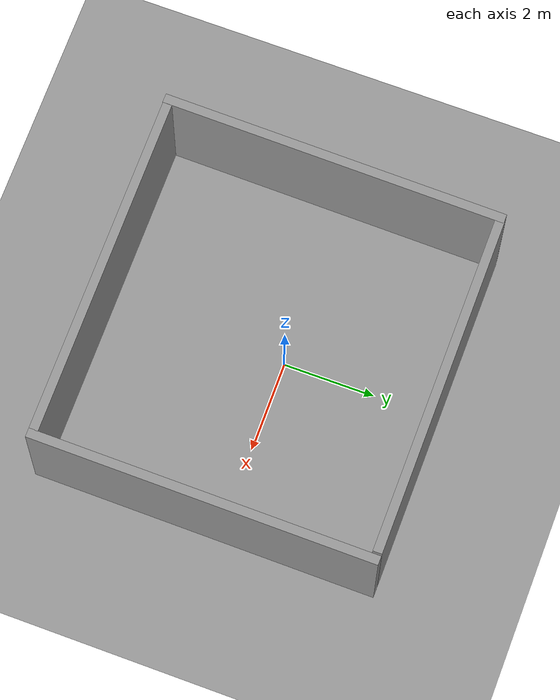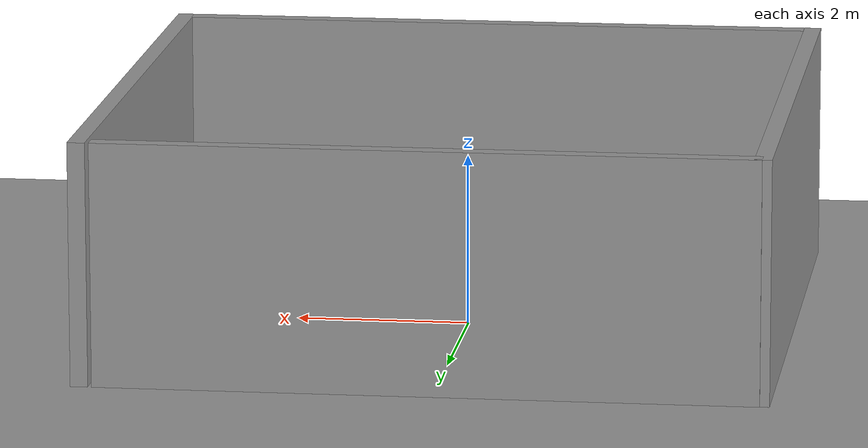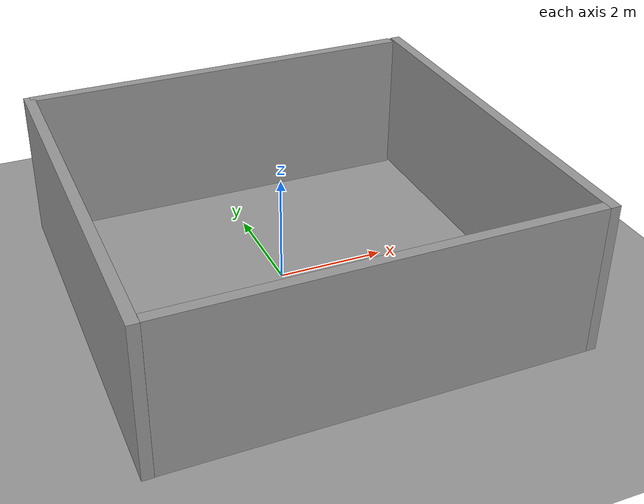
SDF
<sdf version="1.4">
 <world name="default">
  <light name="sun" type="directional">
   <pose>0 0 10 0 -0 0</pose>
   <diffuse>0.8 0.8 0.8 1</diffuse>
   <specular>0.2 0.2 0.2 1</specular>
   <attenuation>
    <range>1000</range>
    <constant>0.5</constant>
    <linear>0.01</linear>
    <quadratic>0.001</quadratic>
   </attenuation>
   <direction>0.5 0.1 -0.9</direction>
  </light>
  <light name="lamp" type="point">
   <pose>-0.242974 -0.494324 3.75 0 -0 0</pose>
   <diffuse>0.5 0.5 0.5 1</diffuse>
   <specular>0.1 0.1 0.1 1</specular>
   <attenuation>
    <range>20</range>
    <constant>1</constant>
    <linear>0.01</linear>
    <quadratic>0.001</quadratic>
   </attenuation>
   <cast_shadows>0</cast_shadows>
   <direction>0 0 -1</direction>
  </light>
  <scene><ambient>0.4 0.4 0.4 1</ambient><background>0.7 0.7 0.7 1</background><shadows>1</shadows></scene>
  <physics type="ode">
   <max_step_size>0.01</max_step_size>
   <real_time_factor>1</real_time_factor>
   <real_time_update_rate>100</real_time_update_rate>
   <gravity>0 0 -9.8</gravity>
  </physics>
  <model name="ground_plane_0">
   <static>1</static>
   <link name="link">
    <collision name="collision">
     <geometry><plane><normal>0 0 1</normal><size>100 100</size></plane></geometry>
     <surface><friction><ode><mu>100</mu><mu2>50</mu2></ode></friction></surface>
    </collision>
    <visual name="visual">
     <cast_shadows>0</cast_shadows>
     <geometry><plane><normal>0 0 1</normal><size>100 100</size></plane></geometry>
     <material>
      <script><uri>file://media/materials/scripts/gazebo.material</uri><name>Gazebo/Grey</name></script>
     </material>
    </visual>
    <velocity_decay><linear>0</linear><angular>0</angular></velocity_decay>
   </link>
   <pose>0.497681 0 0 0 -0 0</pose>
  </model>
  <spherical_coordinates>
   <surface_model>EARTH_WGS84</surface_model>
   <latitude_deg>0</latitude_deg>
   <longitude_deg>0</longitude_deg>
   <elevation>0</elevation>
   <heading_deg>0</heading_deg>
  </spherical_coordinates>
  <model name="grey_wall">
   <static>1</static>
   <link name="link">
    <pose>0 0 1.4 0 -0 0</pose>
    <collision name="collision"><geometry><box><size>7.5 0.2 2.8</size></box></geometry></collision>
    <visual name="visual">
     <cast_shadows>0</cast_shadows>
     <geometry><box><size>7.5 0.2 2.8</size></box></geometry>
     <material>
      <script>
       <uri>model://grey_wall/materials/scripts</uri>
       <uri>model://grey_wall/materials/textures</uri>
       <name>vrc/grey_wall</name>
      </script>
     </material>
    </visual>
    <velocity_decay><linear>0</linear><angular>0</angular></velocity_decay>
   </link>
   <pose>3.97122 -0.293866 0 0 0 -1.57525</pose>
  </model>
  <model name="grey_wall_0">
   <static>1</static>
   <link name="link">
    <pose>0 0 1.4 0 -0 0</pose>
    <collision name="collision"><geometry><box><size>7.5 0.2 2.8</size></box></geometry></collision>
    <visual name="visual">
     <cast_shadows>0</cast_shadows>
     <geometry><box><size>7.5 0.2 2.8</size></box></geometry>
     <material>
      <script>
       <uri>model://grey_wall/materials/scripts</uri>
       <uri>model://grey_wall/materials/textures</uri>
       <name>vrc/grey_wall</name>
      </script>
     </material>
    </visual>
    <velocity_decay><linear>0</linear><angular>0</angular></velocity_decay>
   </link>
   <pose>0.113342 -3.94526 0 0 -0 0</pose>
  </model>
  <model name="grey_wall_1">
   <static>1</static>
   <link name="link">
    <pose>0 0 1.4 0 -0 0</pose>
    <collision name="collision"><geometry><box><size>7.5 0.2 2.8</size></box></geometry></collision>
    <visual name="visual">
     <cast_shadows>0</cast_shadows>
     <geometry><box><size>7.5 0.2 2.8</size></box></geometry>
     <material>
      <script>
       <uri>model://grey_wall/materials/scripts</uri>
       <uri>model://grey_wall/materials/textures</uri>
       <name>vrc/grey_wall</name>
      </script>
     </material>
    </visual>
    <velocity_decay><linear>0</linear><angular>0</angular></velocity_decay>
   </link>
   <pose>0.095603 3.35613 0 0 -0 0</pose>
  </model>
  <model name="grey_wall_2">
   <static>1</static>
   <link name="link">
    <pose>0 0 1.4 0 -0 0</pose>
    <collision name="collision"><geometry><box><size>7.5 0.2 2.8</size></box></geometry></collision>
    <visual name="visual">
     <cast_shadows>0</cast_shadows>
     <geometry><box><size>7.5 0.2 2.8</size></box></geometry>
     <material>
      <script>
       <uri>model://grey_wall/materials/scripts</uri>
       <uri>model://grey_wall/materials/textures</uri>
       <name>vrc/grey_wall</name>
      </script>
     </material>
    </visual>
    <velocity_decay><linear>0</linear><angular>0</angular></velocity_decay>
   </link>
   <pose>-3.70146 -0.303686 0 0 0 -1.58089</pose>
  </model>
 </world>
</sdf>
